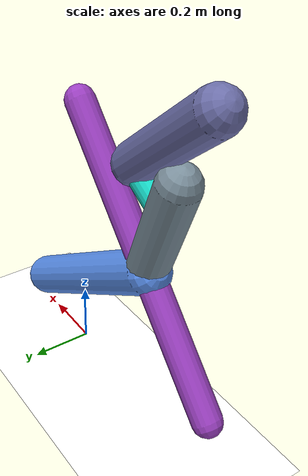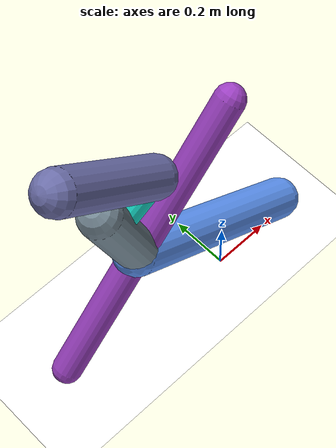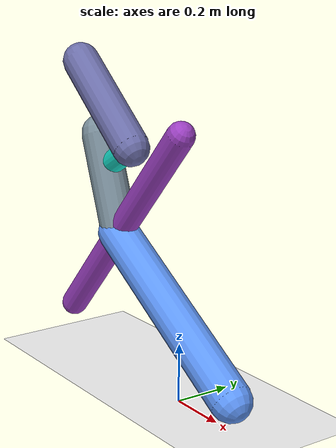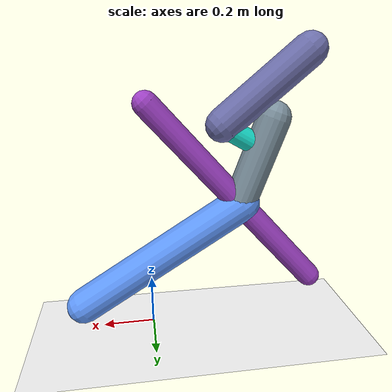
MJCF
<mujoco model="morphology">
  <option timestep="0.01"/>
  <default>
    <default class="/"/>
  </default>
  <asset>
    <texture name="texplane" type="2d" builtin="checker" rgb1="0.1 0.2 0.3" rgb2="0.2 0.3 0.4" width="300" height="300"/>
    <material name="MatPlane" class="/" texture="texplane" texrepeat="20 20" specular="1" shininess="1" reflectance="0.5"/>
  </asset>
  <worldbody>
    <light name="//unnamed_light_0" class="/" directional="true" pos="0 0 1.5" dir="0 0 -1.3" cutoff="1e+02" exponent="1" diffuse="1 1 1" specular="0.1 0.1 0.1"/>
    <geom name="ground" class="/" type="plane" size="15 15 0.5" material="MatPlane" rgba="1 1 1 1"/>
    <body name="body" pos="0 0 0.89">
      <geom name="geom0" class="/" type="capsule" contype="1" conaffinity="1" condim="3" size="0.047" rgba="0.61 0.25 0.76 1" friction="0.4 0.1 0.1" fromto="0 0 0 -0.66 0 -0.73"/>
      <body name="body1" pos="-0.36 0 -0.39">
        <geom name="geom1" class="/" type="capsule" contype="1" conaffinity="1" condim="3" size="0.07" rgba="0.37 0.59 0.97 1" friction="0.4 0.1 0.1" fromto="0 0 0 0.63 0 -0.4"/>
        <joint name="joint1" class="/" type="hinge" axis="0 1 0" limited="true" stiffness="20" range="-50 50" armature="0.1" damping="2"/>
      </body>
      <body name="body2" pos="-0.35 0 -0.39">
        <geom name="geom2" class="/" type="capsule" contype="1" conaffinity="1" condim="3" size="0.064" rgba="0.48 0.56 0.61 1" friction="0.4 0.1 0.1" fromto="0 0 0 -0.12 0 0.33"/>
        <body name="body3" pos="-0.077 0 0.22">
          <geom name="geom3" class="/" type="capsule" contype="1" conaffinity="1" condim="3" size="0.041" rgba="0.085 0.84 0.77 1" friction="0.4 0.1 0.1" fromto="0 0 0 0.16 0 0.091"/>
          <body name="body4" pos="0.15 0 0.088">
            <geom name="geom4" class="/" type="capsule" contype="1" conaffinity="1" condim="3" size="0.064" rgba="0.42 0.43 0.66 1" friction="0.4 0.1 0.1" fromto="0 0 0 -0.31 0 0.26"/>
            <joint name="joint4" class="/" type="hinge" axis="0 1 0" limited="true" stiffness="20" range="-57 57" armature="0.1" damping="2"/>
          </body>
          <joint name="joint3" class="/" type="hinge" axis="0 1 0" limited="true" stiffness="20" range="-38 38" armature="0.1" damping="2"/>
        </body>
        <joint name="joint2" class="/" type="hinge" axis="0 1 0" limited="true" stiffness="20" range="-65 65" armature="0.1" damping="2"/>
      </body>
      <joint name="rootx" class="/" type="slide" axis="1 0 0" limited="false" stiffness="0" armature="0" damping="0"/>
      <joint name="rootz" class="/" type="slide" axis="0 0 1" limited="false" stiffness="0" armature="0" damping="0"/>
      <joint name="rooty" class="/" type="hinge" axis="0 1 0" limited="false" stiffness="0" armature="0" damping="0"/>
    </body>
  </worldbody>
  <actuator>
    <motor name="motor1" class="/" ctrllimited="true" ctrlrange="-1 1" gear="1.5e+02" joint="joint1"/>
    <motor name="motor4" class="/" ctrllimited="true" ctrlrange="-1 1" gear="1.9e+02" joint="joint4"/>
    <motor name="motor3" class="/" ctrllimited="true" ctrlrange="-1 1" gear="1.1e+02" joint="joint3"/>
    <motor name="motor2" class="/" ctrllimited="true" ctrlrange="-1 1" gear="1.4e+02" joint="joint2"/>
  </actuator>
  <sensor>
    <subtreelinvel name="velocity" body="body"/>
  </sensor>
</mujoco>
